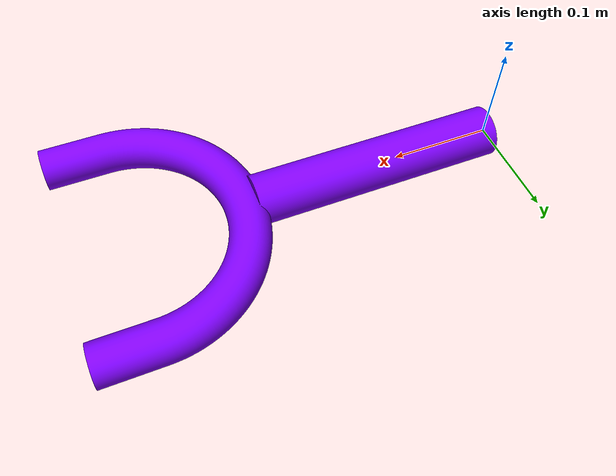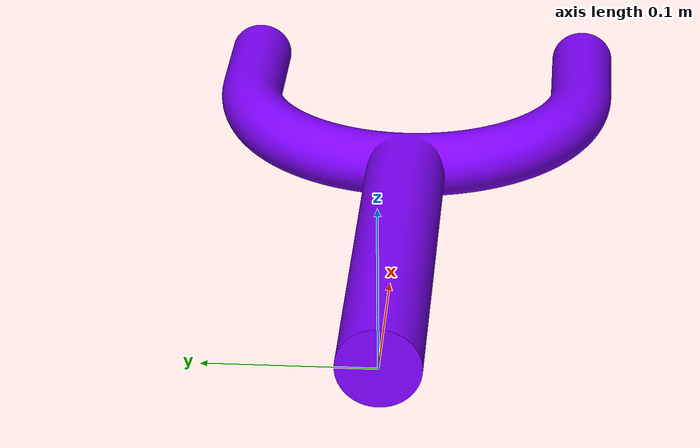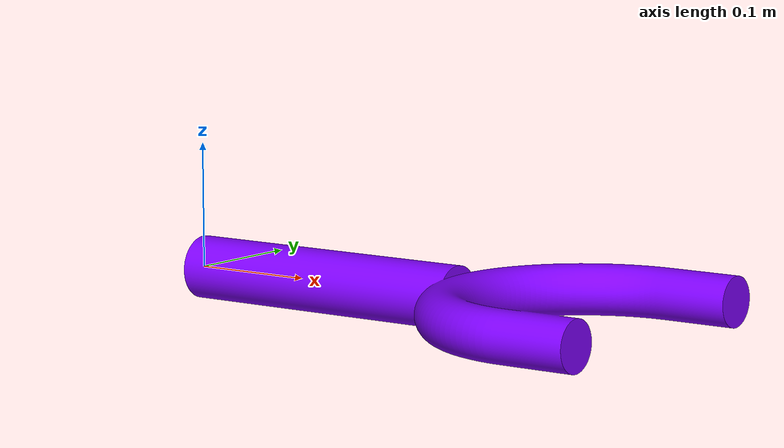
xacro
<?xml version="1.0"?>
<robot name="static_arm" xmlns:xacro="http://ros.org/wiki/xacro">
    <link name="arm_link">
        <visual>
            <geometry>
                <mesh filename="$(find hippo_sim)/models/static_arm/meshes/simple_gripper.dae" />
            </geometry>
            <material name="purple">
                <color rgba="0.5 0 1 1" />
            </material>
        </visual>
        <collision>
            <geometry>
                <mesh filename="$(find hippo_sim)/models/static_arm/meshes/simple_gripper.dae" />
            </geometry>
        </collision>
        <inertial>
            <mass value="1.0" />
            <origin xyz="0 0 0" />
            <inertia ixx="0.1" ixy="0" ixz="0" iyy="0.1" iyz="0" izz="0.1" />
        </inertial>
    </link>
</robot>
